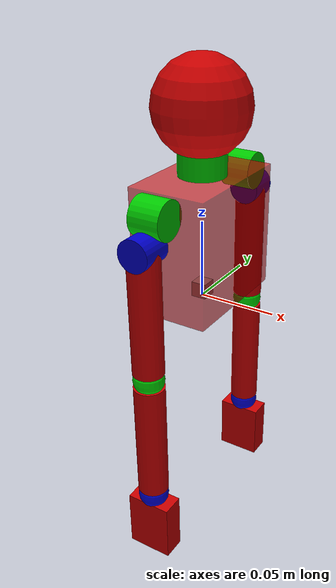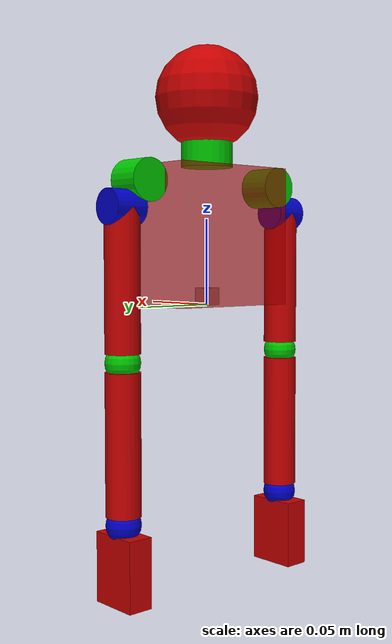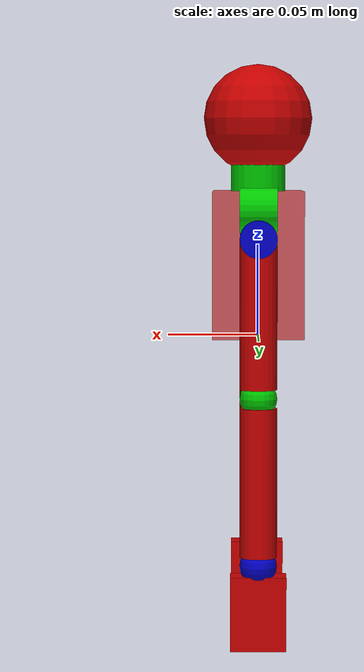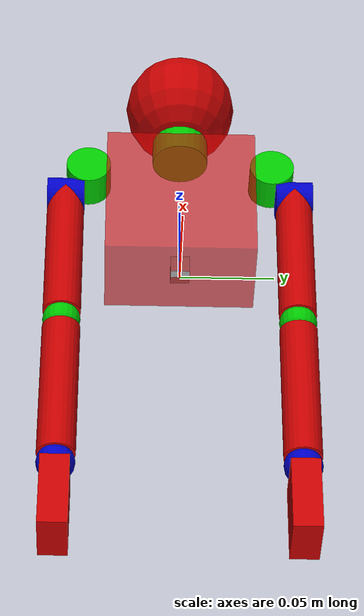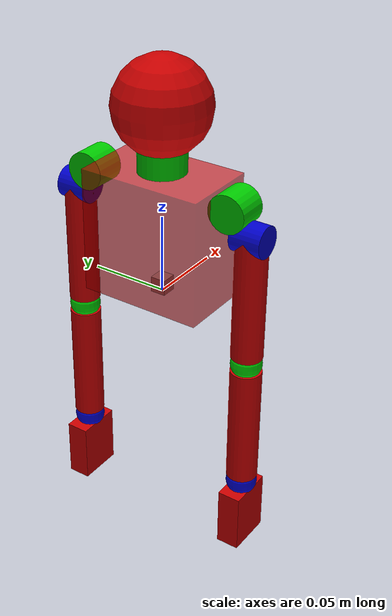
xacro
<?xml version="1.0"?>
<robot xmlns:xacro="http://www.ros.org/wiki/xacro" name="humanbot">

    <!-- define materials -->

    <xacro:macro name="material_visual_red" params="">
        <material name="red">
            <color rgba="0.8 0 0 1"/>
        </material>
    </xacro:macro>

    <xacro:macro name="material_visual_torso_red" params="">
        <material name="torso_red">
            <color rgba="0.8 0 0 0.6"/>
        </material>
    </xacro:macro>

    <xacro:macro name="material_visual_green" params="">
        <material name="green">
            <color rgba="0 0.8 0 1"/>
        </material>
    </xacro:macro>

    <xacro:macro name="material_visual_blue" params="">
        <material name="blue">
            <color rgba="0 0 0.8 1"/>
        </material>
    </xacro:macro>

    <xacro:macro name="material_visual_grey" params="">
        <material name="grey">
            <color rgba="0.7 0.7 0.7 1"/>
        </material>
    </xacro:macro>

    <!-- define head and torso -->

    <xacro:macro name="head_torso_part" params="">

        <!-- define base_link -->

        <link name="base_link">

            <visual>
                <origin rpy="0 0 0" xyz="0 0 0.005"/>
                <geometry>
                    <box size="0.01 0.01 0.01"/>
                </geometry>
                <xacro:material_visual_grey />
            </visual>

        </link>

        <!-- define torso_link -->

        <link name="torso_link">

            <visual>
                <origin rpy="0 0 0" xyz="0 0 0.04"/>
                <geometry>
                    <box size="0.05 0.08 0.08"/>
                </geometry>
                <xacro:material_visual_torso_red />
            </visual>

        </link>

        <!-- define base_torso_joint -->

        <joint name="base_torso_joint" type="fixed">

            <parent link="base_link"/>
            <child link="torso_link"/>
            <origin xyz="0 0 0" rpy="0 0 0"/>

        </joint>

        <!-- define neck_link -->

        <link name="neck_link">

            <visual>
                <origin rpy="0 0 0" xyz="0 0 0.0075"/>
                <geometry>
                    <cylinder length="0.015" radius="0.015"/>
                </geometry>
                <xacro:material_visual_green />
            </visual>

        </link>

        <!-- define torso_neck_joint -->

        <joint name="torso_neck_joint" type="revolute">

            <parent link="torso_link"/>
            <child link="neck_link"/>
            <origin xyz="0 0 0.08" rpy="0 0 0"/>
            <limit lower="-1.5" upper="1.5" effort="1.0" velocity="0.005"/>
            <axis xyz="0 0 1"/>

        </joint>

        <!-- define head_link -->

        <link name="head_link">

            <visual>
                <origin rpy="0 0 0" xyz="0 0 0"/>
                <geometry>
                    <sphere radius="0.03"/>
                </geometry>
                <xacro:material_visual_red />
            </visual>

        </link>

        <!-- define neck_head_joint -->

        <joint name="neck_head_joint" type="fixed">

            <parent link="neck_link"/>
            <child link="head_link"/>
            <origin xyz="0 0 0.04" rpy="0 0 0"/>

        </joint>

    </xacro:macro>

    <!-- define shoulder up -->

    <xacro:macro name="shoulder_up_part" params="position *origin">

        <!-- define shoulder_up_link -->

        <link name="${position}_shoulder_up_link">

            <visual>
                <origin rpy="0 0 0" xyz="0 0 0"/>
                <geometry>
                    <cylinder length="0.02" radius="0.012"/>
                </geometry>
                <material name="green"/>
            </visual>

        </link>

        <!-- define torso_shoulderup_joint -->

        <joint name="torso_${position}shoulderup_joint" type="revolute">

            <parent link="torso_link"/>
            <child link="${position}_shoulder_up_link"/>
            <xacro:insert_block name="origin"/>
            <limit lower="0" upper="1.5" effort="1.0" velocity="0.005"/>
            <axis xyz="0 0 1"/>

        </joint>

    </xacro:macro>

    <!-- define shoulder forward -->

    <xacro:macro name="shoulder_forward_part" params="position *origin">

        <!-- define shoulder_forward_link -->

        <link name="${position}_shoulder_forward_link">

            <visual>
                <origin rpy="0 0 0" xyz="0 0 0"/>
                <geometry>
                    <cylinder length="0.02" radius="0.01"/>
                </geometry>
                <xacro:material_visual_blue />
            </visual>

        </link>

        <!-- define shoulder_up_forwar_joint -->

        <joint name="${position}_shoulder_up_forwar_joint" type="revolute">

            <parent link="${position}_shoulder_up_link"/>
            <child link="${position}_shoulder_forward_link"/>
            <xacro:insert_block name="origin" />
            <limit lower="-1.5" upper="3" effort="1.0" velocity="0.005"/>
            <axis xyz="0 0 1"/>

        </joint>

    </xacro:macro>

    <!-- define upperarm part -->

    <xacro:macro name="upperarm_part" params="position visual_z *origin">

        <!-- define upperarm_link -->

        <link name="${position}_upperarm_link">

            <visual>
                <origin rpy="0 0 0" xyz="0 0 ${visual_z}"/>
                <geometry>
                    <cylinder length="0.08" radius="0.01"/>
                </geometry>
                <xacro:material_visual_red />
            </visual>

        </link>

        <!-- define shoulderforward_upperarm_joint -->

        <joint name="${position}_shoulderforward_upperarm_joint" type="revolute">

            <parent link="${position}_shoulder_forward_link"/>
            <child link="${position}_upperarm_link"/>
            <xacro:insert_block name="origin" />
            <limit lower="-1.5" upper="0.5" effort="1.0" velocity="0.005"/>
            <axis xyz="0 0 1"/>

        </joint>

    </xacro:macro>

    <!-- define elbow part -->

    <xacro:macro name="elbow_part" params="position *origin">

        <!-- define elbow_link -->

        <link name="${position}_elbow_link">

            <visual>
                <origin rpy="0 0 0" xyz="0 0 0"/>
                <geometry>
                    <sphere radius="0.01"/>
                </geometry>
                <xacro:material_visual_green />
            </visual>

        </link>

        <!-- define elbow_upperarm_joint -->

        <joint name="${position}_elbow_upperarm_joint" type="revolute">

            <parent link="${position}_upperarm_link"/>
            <child link="${position}_elbow_link"/>
            <xacro:insert_block name="origin" />
            <limit lower="-3" upper="0" effort="1.0" velocity="0.005"/>
            <axis xyz="1 0 0"/>

        </joint>

    </xacro:macro>

    <!-- define lowerarm part -->

    <xacro:macro name="lowerarm_part" params="position visual_z *origin">

        <!-- define lowerarm_link -->

        <link name="${position}_lowerarm_link">

            <visual>
                <origin rpy="0 0 0" xyz="0 0 ${visual_z}"/>
                <geometry>
                    <cylinder length="0.08" radius="0.01"/>
                </geometry>
                <xacro:material_visual_red/>
            </visual>

        </link>

        <!-- define elbow_lowerarm_joint -->

        <joint name="${position}_elbow_lowerarm_joint" type="revolute">

            <parent link="${position}_elbow_link"/>
            <child link="${position}_lowerarm_link"/>
            <xacro:insert_block name="origin" />
            <limit lower="-0.2" upper="1.57" effort="1.0" velocity="0.005"/>
            <axis xyz="0 0 1"/>

        </joint>

    </xacro:macro>

    <!-- define wrist part -->

    <xacro:macro name="wrist_part" params="position *origin">

        <!-- define wrist_link -->

        <link name="${position}_wrist_link">
            <visual>
                <origin rpy="0 0 0" xyz="0 0 0"/>
                <geometry>
                    <sphere radius="0.01"/>
                </geometry>
                <xacro:material_visual_blue />
            </visual>
        </link>

        <!-- define lowerarm_wrist_joint -->

        <joint name="${position}_lowerarm_wrist_link" type="revolute">

            <parent link="${position}_lowerarm_link"/>
            <child link="${position}_wrist_link"/>
            <xacro:insert_block name="origin" />
            <limit lower="-0.5" upper="0.5" effort="1.0" velocity="0.005"/>
            <axis xyz="1 0 0"/>

        </joint>

    </xacro:macro>

    <!-- define hand part -->

    <xacro:macro name="hand_part" params="position *origin">

        <!-- define hand_link -->

        <link name="${position}_hand_link">

            <visual>
                <origin rpy="0 0 0" xyz="0 0 0.015"/>
                <geometry>
                    <box size="0.03 0.015 0.04"/>
                </geometry>
                <xacro:material_visual_red />
            </visual>

        </link>

        <!-- define lowerarm_hand_joint -->

        <joint name="${position}_wrist_hand_joint" type="revolute">

            <parent link="${position}_wrist_link"/>
            <child link="${position}_hand_link"/>
            <xacro:insert_block name="origin" />
            <limit lower="-1.5" upper="1.5" effort="1.0" velocity="0.005"/>
            <axis xyz="1 0 0"/>

        </joint>

    </xacro:macro>

    <!-- define left arm -->

    <xacro:macro name="left_arm_part" params="">

        <!-- apply left shoulder up -->
        <xacro:shoulder_up_part position="left">
            <origin xyz="0 0.05 0.07" rpy="0 1.57 0"/>
        </xacro:shoulder_up_part>

        <!-- apply left shoulder forward -->
        <xacro:shoulder_forward_part position="left">
            <origin xyz="0.015 0.012 0" rpy="1.57 0 0"/>
        </xacro:shoulder_forward_part>

        <!-- apply left upperarm -->
        <xacro:upperarm_part position="left" visual_z="0.04">
            <origin xyz="0 0 0" rpy="0 1.57 0"/>
        </xacro:upperarm_part>

        <!-- apply left elbow -->
        <xacro:elbow_part position="left">
            <origin xyz="0 0 0.085" rpy="0 0 0"/>
        </xacro:elbow_part>

        <!-- apply left lowerarm -->
        <xacro:lowerarm_part position="left" visual_z="0.04">
            <origin xyz="0 0 0.005" rpy="0 0 0"/>
        </xacro:lowerarm_part>

        <!-- apply left wrist -->
        <xacro:wrist_part position="left">
            <origin xyz="0 0 0.085" rpy="0 0 0"/>
        </xacro:wrist_part>

        <!-- apply left hand -->
        <xacro:hand_part position="left">
            <origin xyz="0 0 0.01" rpy="0 0 1.57"/>
        </xacro:hand_part>

    </xacro:macro>

    <!-- define right arm -->

    <xacro:macro name="right_arm_part" params="">

        <!-- apply right shoulder up -->
        <xacro:shoulder_up_part position="right">
            <origin xyz="0 -0.05 0.07" rpy="3.14 1.57 0"/>
        </xacro:shoulder_up_part>

        <!-- apply right shoulder forward -->
        <xacro:shoulder_forward_part position="right">
            <origin xyz="0.015 0.012 0" rpy="-1.57 0 0"/>
        </xacro:shoulder_forward_part>

        <!-- apply right upperarm -->
        <xacro:upperarm_part position="right" visual_z="-0.04">
            <origin xyz="0 0 0" rpy="0 -1.57 0"/>
        </xacro:upperarm_part>

        <!-- apply right elbow -->
        <xacro:elbow_part position="right">
            <origin xyz="0 0 -0.085" rpy="0 3.14 0"/>
        </xacro:elbow_part>

        <!-- apply right lowerarm -->
        <xacro:lowerarm_part position="right" visual_z="-0.04">
            <origin xyz="0 0 0.005" rpy="0 3.14 0"/>
        </xacro:lowerarm_part>

        <!-- apply right wrist -->
        <xacro:wrist_part position="right">
            <origin xyz="0 0 -0.085" rpy="0 3.14 0"/>
        </xacro:wrist_part>

        <!-- apply right hand -->
        <xacro:hand_part position="right">
            <origin xyz="0 0 0.01" rpy="0 0 -1.57"/>
        </xacro:hand_part>

    </xacro:macro>

    <!-- define the whole body -->

    <xacro:macro name="whole_humanbot" params="">

        <!-- apply head and torso -->
        <xacro:head_torso_part />

        <!-- apply left arm -->
        <xacro:left_arm_part />

        <!-- apply right arm -->
        <xacro:right_arm_part />

    </xacro:macro>

    <!-- apply whole body -->

    <xacro:whole_humanbot />

</robot>
